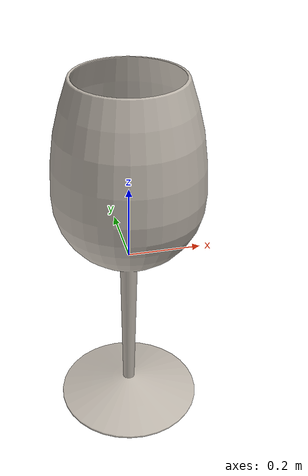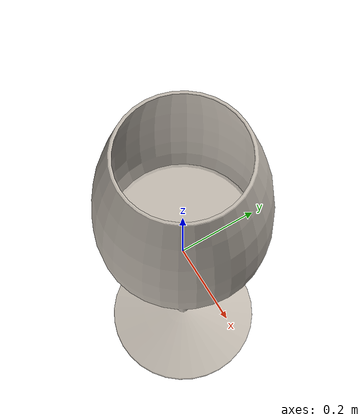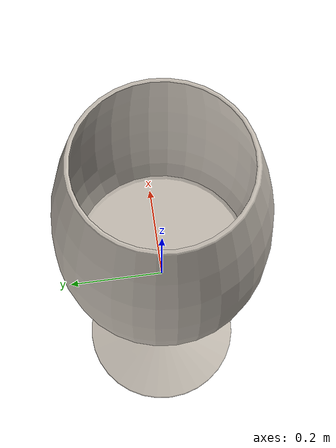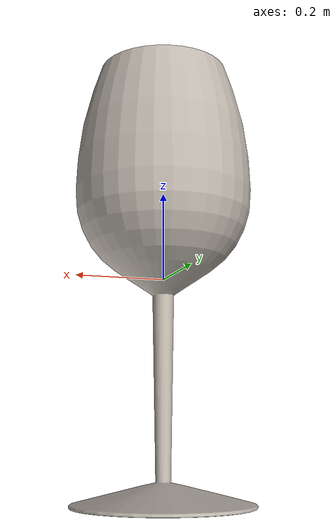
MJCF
<mujoco model="wine_glass">
  <asset>
  <texture file="visual/ceramic.png" name="tex-wine_glass" type="2d" />
  <material name="wine_glass" reflectance="0.5" texrepeat="1 1" texture="tex-wine_glass" texuniform="false" />
  <mesh file="visual/model_normalized_0.obj" name="model_normalized_0_vis" scale="1.0 1.0 1.0" /><mesh file="visual/model_normalized_1.obj" name="model_normalized_1_vis" scale="1.0 1.0 1.0" /><mesh file="collision/model_normalized_collision_22.obj" name="model_normalized_collision_22._coll" scale="1.0 1.0 1.0" /><mesh file="collision/model_normalized_collision_23.obj" name="model_normalized_collision_23._coll" scale="1.0 1.0 1.0" /><mesh file="collision/model_normalized_collision_21.obj" name="model_normalized_collision_21._coll" scale="1.0 1.0 1.0" /><mesh file="collision/model_normalized_collision_20.obj" name="model_normalized_collision_20._coll" scale="1.0 1.0 1.0" /><mesh file="collision/model_normalized_collision_24.obj" name="model_normalized_collision_24._coll" scale="1.0 1.0 1.0" /><mesh file="collision/model_normalized_collision_30.obj" name="model_normalized_collision_30._coll" scale="1.0 1.0 1.0" /><mesh file="collision/model_normalized_collision_18.obj" name="model_normalized_collision_18._coll" scale="1.0 1.0 1.0" /><mesh file="collision/model_normalized_collision_19.obj" name="model_normalized_collision_19._coll" scale="1.0 1.0 1.0" /><mesh file="collision/model_normalized_collision_31.obj" name="model_normalized_collision_31._coll" scale="1.0 1.0 1.0" /><mesh file="collision/model_normalized_collision_25.obj" name="model_normalized_collision_25._coll" scale="1.0 1.0 1.0" /><mesh file="collision/model_normalized_collision_27.obj" name="model_normalized_collision_27._coll" scale="1.0 1.0 1.0" /><mesh file="collision/model_normalized_collision_26.obj" name="model_normalized_collision_26._coll" scale="1.0 1.0 1.0" /><mesh file="collision/model_normalized_collision_9.obj" name="model_normalized_collision_9._coll" scale="1.0 1.0 1.0" /><mesh file="collision/model_normalized_collision_8.obj" name="model_normalized_collision_8._coll" scale="1.0 1.0 1.0" /><mesh file="collision/model_normalized_collision_6.obj" name="model_normalized_collision_6._coll" scale="1.0 1.0 1.0" /><mesh file="collision/model_normalized_collision_7.obj" name="model_normalized_collision_7._coll" scale="1.0 1.0 1.0" /><mesh file="collision/model_normalized_collision_5.obj" name="model_normalized_collision_5._coll" scale="1.0 1.0 1.0" /><mesh file="collision/model_normalized_collision_4.obj" name="model_normalized_collision_4._coll" scale="1.0 1.0 1.0" /><mesh file="collision/model_normalized_collision_0.obj" name="model_normalized_collision_0._coll" scale="1.0 1.0 1.0" /><mesh file="collision/model_normalized_collision_1.obj" name="model_normalized_collision_1._coll" scale="1.0 1.0 1.0" /><mesh file="collision/model_normalized_collision_3.obj" name="model_normalized_collision_3._coll" scale="1.0 1.0 1.0" /><mesh file="collision/model_normalized_collision_2.obj" name="model_normalized_collision_2._coll" scale="1.0 1.0 1.0" /><mesh file="collision/model_normalized_collision_17.obj" name="model_normalized_collision_17._coll" scale="1.0 1.0 1.0" /><mesh file="collision/model_normalized_collision_16.obj" name="model_normalized_collision_16._coll" scale="1.0 1.0 1.0" /><mesh file="collision/model_normalized_collision_28.obj" name="model_normalized_collision_28._coll" scale="1.0 1.0 1.0" /><mesh file="collision/model_normalized_collision_14.obj" name="model_normalized_collision_14._coll" scale="1.0 1.0 1.0" /><mesh file="collision/model_normalized_collision_15.obj" name="model_normalized_collision_15._coll" scale="1.0 1.0 1.0" /><mesh file="collision/model_normalized_collision_29.obj" name="model_normalized_collision_29._coll" scale="1.0 1.0 1.0" /><mesh file="collision/model_normalized_collision_11.obj" name="model_normalized_collision_11._coll" scale="1.0 1.0 1.0" /><mesh file="collision/model_normalized_collision_10.obj" name="model_normalized_collision_10._coll" scale="1.0 1.0 1.0" /><mesh file="collision/model_normalized_collision_12.obj" name="model_normalized_collision_12._coll" scale="1.0 1.0 1.0" /><mesh file="collision/model_normalized_collision_13.obj" name="model_normalized_collision_13._coll" scale="1.0 1.0 1.0" /><texture type="2d" name="material_0" file="visual/material_0.png" /><texture type="2d" name="material_1" file="visual/material_1.png" /><material name="material_0" texture="material_0" specular="0.4000000000000001" shininess="0.001" /><material name="material_1" texture="material_1" specular="0.4000000000000001" shininess="0.001" /></asset>
  <worldbody>
    <body>
      <body name="object">
      <geom solimp="0.998 0.998 0.001" solref="0.001 1" density="100" friction="0.95 0.3 0.1" type="mesh" mesh="model_normalized_0_vis" conaffinity="0" contype="0" group="1" material="material_1" /><geom solimp="0.998 0.998 0.001" solref="0.001 1" density="100" friction="0.95 0.3 0.1" type="mesh" mesh="model_normalized_1_vis" conaffinity="0" contype="0" group="1" material="material_1" /><geom solimp="0.998 0.998 0.001" solref="0.001 1" density="100" friction="0.95 0.3 0.1" type="mesh" mesh="model_normalized_collision_22._coll" group="0" rgba="0.8 0.8 0.8 0.0" /><geom solimp="0.998 0.998 0.001" solref="0.001 1" density="100" friction="0.95 0.3 0.1" type="mesh" mesh="model_normalized_collision_23._coll" group="0" rgba="0.8 0.8 0.8 0.0" /><geom solimp="0.998 0.998 0.001" solref="0.001 1" density="100" friction="0.95 0.3 0.1" type="mesh" mesh="model_normalized_collision_21._coll" group="0" rgba="0.8 0.8 0.8 0.0" /><geom solimp="0.998 0.998 0.001" solref="0.001 1" density="100" friction="0.95 0.3 0.1" type="mesh" mesh="model_normalized_collision_20._coll" group="0" rgba="0.8 0.8 0.8 0.0" /><geom solimp="0.998 0.998 0.001" solref="0.001 1" density="100" friction="0.95 0.3 0.1" type="mesh" mesh="model_normalized_collision_24._coll" group="0" rgba="0.8 0.8 0.8 0.0" /><geom solimp="0.998 0.998 0.001" solref="0.001 1" density="100" friction="0.95 0.3 0.1" type="mesh" mesh="model_normalized_collision_30._coll" group="0" rgba="0.8 0.8 0.8 0.0" /><geom solimp="0.998 0.998 0.001" solref="0.001 1" density="100" friction="0.95 0.3 0.1" type="mesh" mesh="model_normalized_collision_18._coll" group="0" rgba="0.8 0.8 0.8 0.0" /><geom solimp="0.998 0.998 0.001" solref="0.001 1" density="100" friction="0.95 0.3 0.1" type="mesh" mesh="model_normalized_collision_19._coll" group="0" rgba="0.8 0.8 0.8 0.0" /><geom solimp="0.998 0.998 0.001" solref="0.001 1" density="100" friction="0.95 0.3 0.1" type="mesh" mesh="model_normalized_collision_31._coll" group="0" rgba="0.8 0.8 0.8 0.0" /><geom solimp="0.998 0.998 0.001" solref="0.001 1" density="100" friction="0.95 0.3 0.1" type="mesh" mesh="model_normalized_collision_25._coll" group="0" rgba="0.8 0.8 0.8 0.0" /><geom solimp="0.998 0.998 0.001" solref="0.001 1" density="100" friction="0.95 0.3 0.1" type="mesh" mesh="model_normalized_collision_27._coll" group="0" rgba="0.8 0.8 0.8 0.0" /><geom solimp="0.998 0.998 0.001" solref="0.001 1" density="100" friction="0.95 0.3 0.1" type="mesh" mesh="model_normalized_collision_26._coll" group="0" rgba="0.8 0.8 0.8 0.0" /><geom solimp="0.998 0.998 0.001" solref="0.001 1" density="100" friction="0.95 0.3 0.1" type="mesh" mesh="model_normalized_collision_9._coll" group="0" rgba="0.8 0.8 0.8 0.0" /><geom solimp="0.998 0.998 0.001" solref="0.001 1" density="100" friction="0.95 0.3 0.1" type="mesh" mesh="model_normalized_collision_8._coll" group="0" rgba="0.8 0.8 0.8 0.0" /><geom solimp="0.998 0.998 0.001" solref="0.001 1" density="100" friction="0.95 0.3 0.1" type="mesh" mesh="model_normalized_collision_6._coll" group="0" rgba="0.8 0.8 0.8 0.0" /><geom solimp="0.998 0.998 0.001" solref="0.001 1" density="100" friction="0.95 0.3 0.1" type="mesh" mesh="model_normalized_collision_7._coll" group="0" rgba="0.8 0.8 0.8 0.0" /><geom solimp="0.998 0.998 0.001" solref="0.001 1" density="100" friction="0.95 0.3 0.1" type="mesh" mesh="model_normalized_collision_5._coll" group="0" rgba="0.8 0.8 0.8 0.0" /><geom solimp="0.998 0.998 0.001" solref="0.001 1" density="100" friction="0.95 0.3 0.1" type="mesh" mesh="model_normalized_collision_4._coll" group="0" rgba="0.8 0.8 0.8 0.0" /><geom solimp="0.998 0.998 0.001" solref="0.001 1" density="100" friction="0.95 0.3 0.1" type="mesh" mesh="model_normalized_collision_0._coll" group="0" rgba="0.8 0.8 0.8 0.0" /><geom solimp="0.998 0.998 0.001" solref="0.001 1" density="100" friction="0.95 0.3 0.1" type="mesh" mesh="model_normalized_collision_1._coll" group="0" rgba="0.8 0.8 0.8 0.0" /><geom solimp="0.998 0.998 0.001" solref="0.001 1" density="100" friction="0.95 0.3 0.1" type="mesh" mesh="model_normalized_collision_3._coll" group="0" rgba="0.8 0.8 0.8 0.0" /><geom solimp="0.998 0.998 0.001" solref="0.001 1" density="100" friction="0.95 0.3 0.1" type="mesh" mesh="model_normalized_collision_2._coll" group="0" rgba="0.8 0.8 0.8 0.0" /><geom solimp="0.998 0.998 0.001" solref="0.001 1" density="100" friction="0.95 0.3 0.1" type="mesh" mesh="model_normalized_collision_17._coll" group="0" rgba="0.8 0.8 0.8 0.0" /><geom solimp="0.998 0.998 0.001" solref="0.001 1" density="100" friction="0.95 0.3 0.1" type="mesh" mesh="model_normalized_collision_16._coll" group="0" rgba="0.8 0.8 0.8 0.0" /><geom solimp="0.998 0.998 0.001" solref="0.001 1" density="100" friction="0.95 0.3 0.1" type="mesh" mesh="model_normalized_collision_28._coll" group="0" rgba="0.8 0.8 0.8 0.0" /><geom solimp="0.998 0.998 0.001" solref="0.001 1" density="100" friction="0.95 0.3 0.1" type="mesh" mesh="model_normalized_collision_14._coll" group="0" rgba="0.8 0.8 0.8 0.0" /><geom solimp="0.998 0.998 0.001" solref="0.001 1" density="100" friction="0.95 0.3 0.1" type="mesh" mesh="model_normalized_collision_15._coll" group="0" rgba="0.8 0.8 0.8 0.0" /><geom solimp="0.998 0.998 0.001" solref="0.001 1" density="100" friction="0.95 0.3 0.1" type="mesh" mesh="model_normalized_collision_29._coll" group="0" rgba="0.8 0.8 0.8 0.0" /><geom solimp="0.998 0.998 0.001" solref="0.001 1" density="100" friction="0.95 0.3 0.1" type="mesh" mesh="model_normalized_collision_11._coll" group="0" rgba="0.8 0.8 0.8 0.0" /><geom solimp="0.998 0.998 0.001" solref="0.001 1" density="100" friction="0.95 0.3 0.1" type="mesh" mesh="model_normalized_collision_10._coll" group="0" rgba="0.8 0.8 0.8 0.0" /><geom solimp="0.998 0.998 0.001" solref="0.001 1" density="100" friction="0.95 0.3 0.1" type="mesh" mesh="model_normalized_collision_12._coll" group="0" rgba="0.8 0.8 0.8 0.0" /><geom solimp="0.998 0.998 0.001" solref="0.001 1" density="100" friction="0.95 0.3 0.1" type="mesh" mesh="model_normalized_collision_13._coll" group="0" rgba="0.8 0.8 0.8 0.0" /></body>
      <site rgba="0 0 0 0" size="0.005" pos="2.2758234629410845e-05 -2.2758234629410845e-05 -0.5075757571023398" name="bottom_site" />
      <site rgba="0 0 0 0" size="0.005" pos="2.2758234629410845e-05 -2.2758234629410845e-05 0.5075757583521627" name="top_site" />
      <site rgba="0 0 0 0" size="0.005" pos="0.21214397043158836 0.21209845396232954 6.249114559153668e-10" name="horizontal_radius_site" />
    </body>
  </worldbody>
</mujoco>
